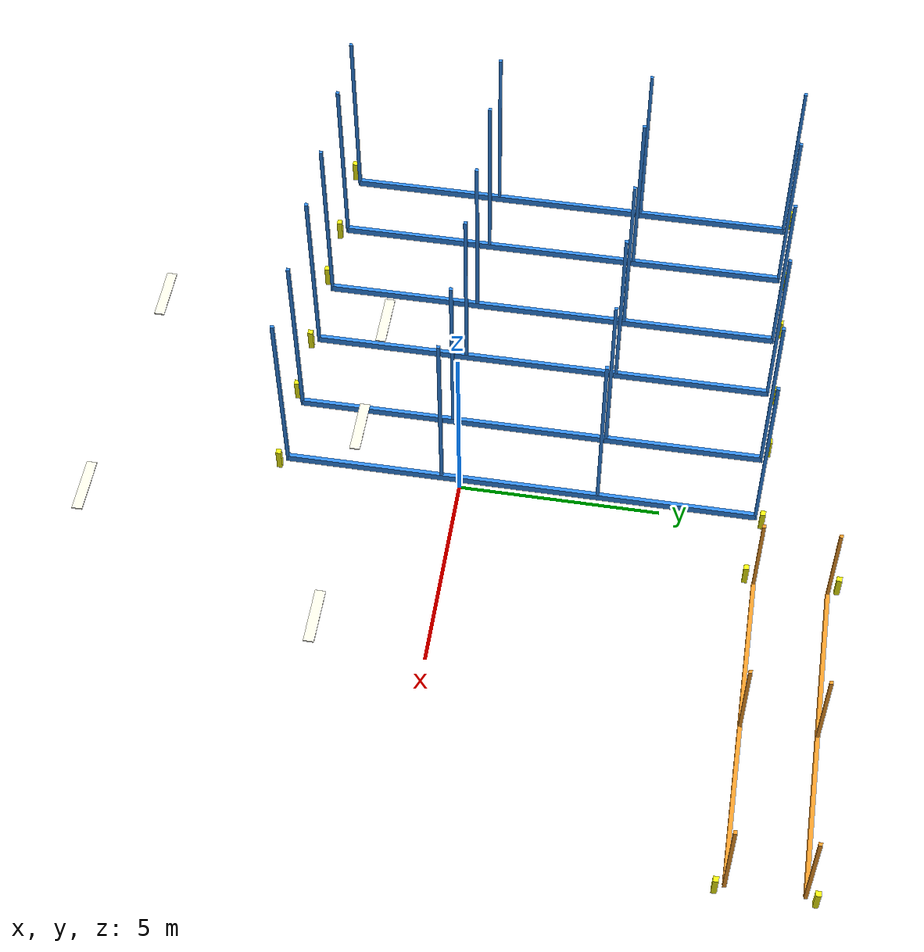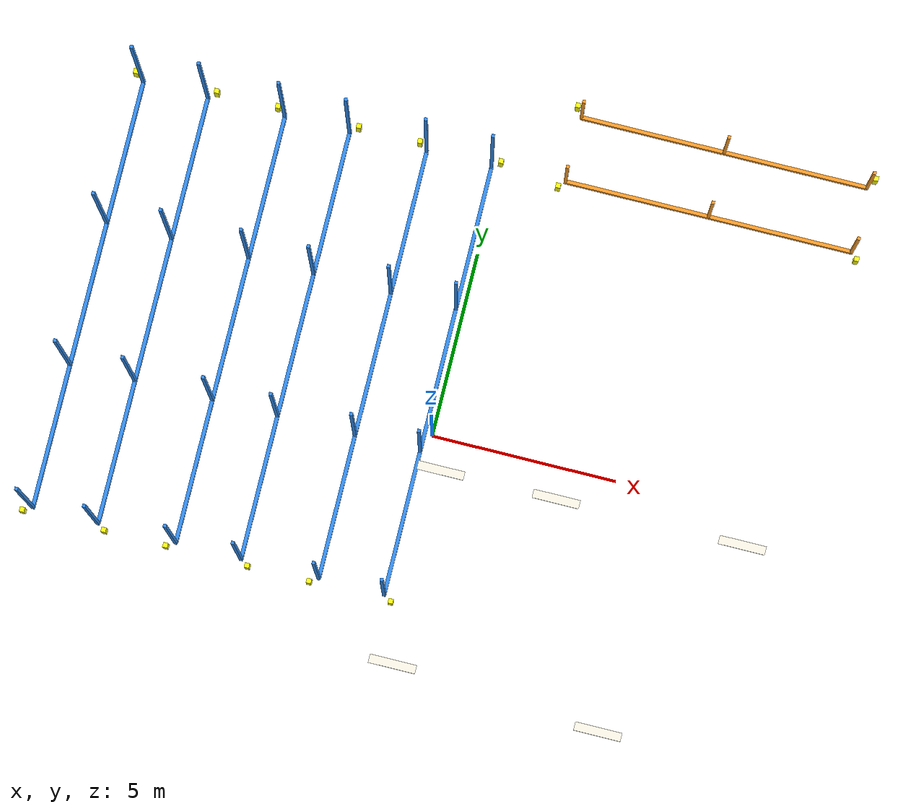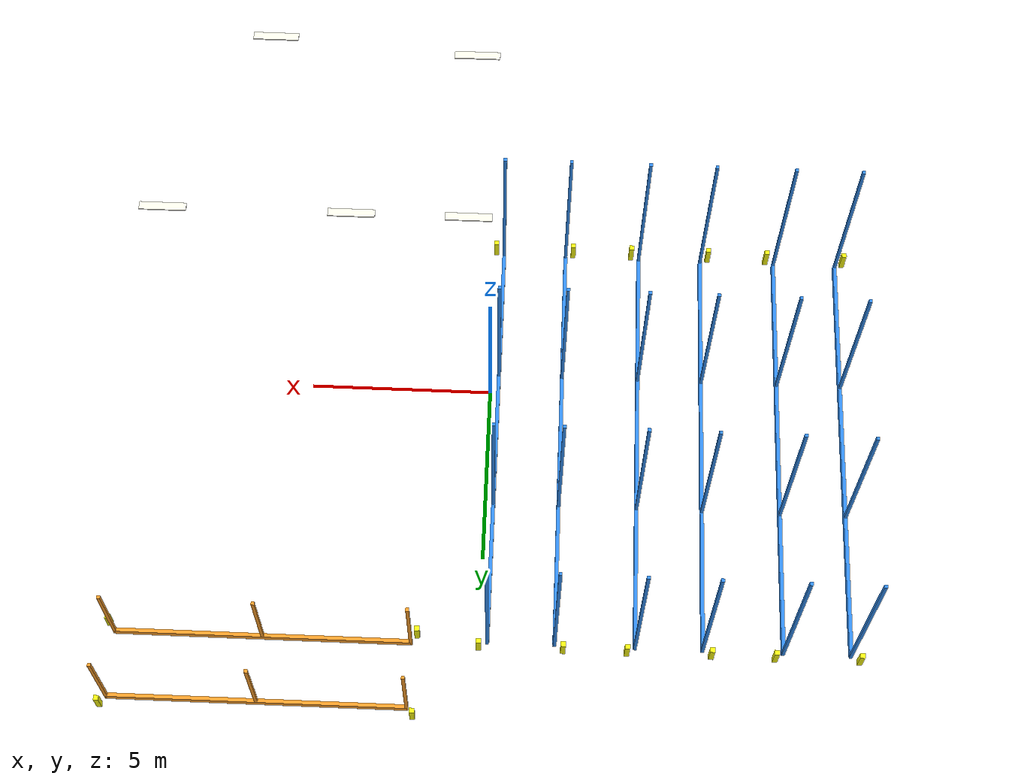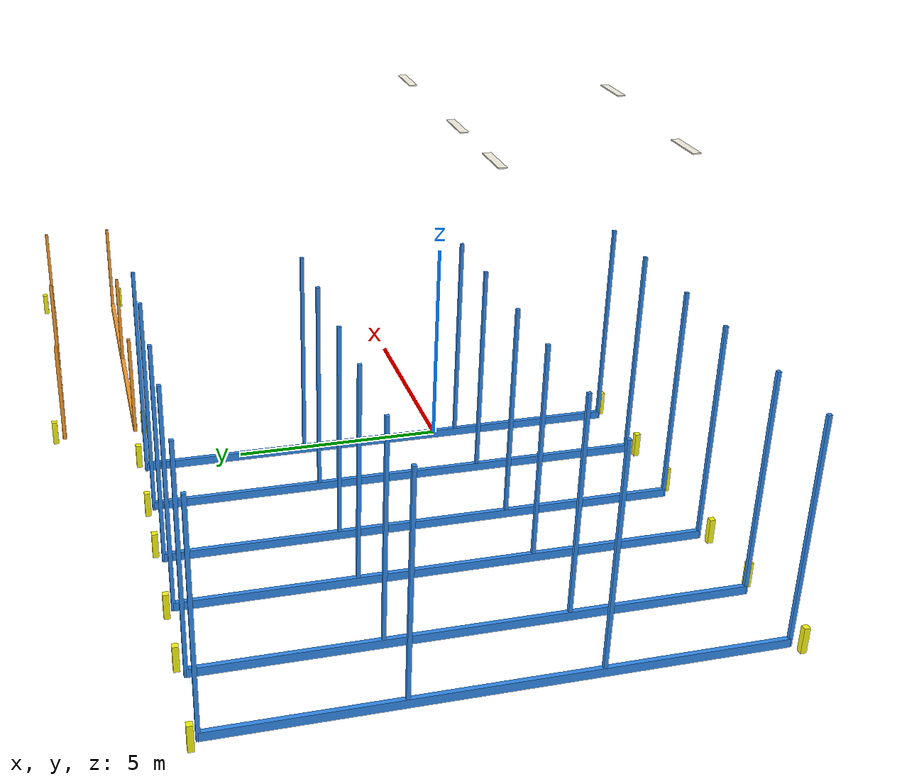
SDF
<sdf version="1.8">
 <world name="warehouse_v2">
  <model name="lamp_glow_6">
   <static>true</static>
   <pose>0.62 -6.50 6.97 0 0 0</pose>
   <link name="link">
    <visual name="visual">
     <geometry><box><size>1.20 0.22 0.03</size></box></geometry>
     <material>
      <ambient>1 0.98 0.92 1</ambient>
      <diffuse>1 0.98 0.92 1</diffuse>
      <specular>0.2 0.2 0.2 1</specular>
      <emissive>1 0.97 0.90 1</emissive>
     </material>
     <cast_shadows>false</cast_shadows>
    </visual>
   </link>
  </model>
  <model name="lamp_glow_7">
   <static>true</static>
   <pose>0.62 -1.50 6.97 0 0 0</pose>
   <link name="link">
    <visual name="visual">
     <geometry><box><size>1.20 0.22 0.03</size></box></geometry>
     <material>
      <ambient>1 0.98 0.92 1</ambient>
      <diffuse>1 0.98 0.92 1</diffuse>
      <specular>0.2 0.2 0.2 1</specular>
      <emissive>1 0.97 0.90 1</emissive>
     </material>
     <cast_shadows>false</cast_shadows>
    </visual>
   </link>
  </model>
  <model name="lamp_glow_10">
   <static>true</static>
   <pose>3.60 -1.50 6.97 0 0 0</pose>
   <link name="link">
    <visual name="visual">
     <geometry><box><size>1.20 0.22 0.03</size></box></geometry>
     <material>
      <ambient>1 0.98 0.92 1</ambient>
      <diffuse>1 0.98 0.92 1</diffuse>
      <specular>0.2 0.2 0.2 1</specular>
      <emissive>1 0.97 0.90 1</emissive>
     </material>
     <cast_shadows>false</cast_shadows>
    </visual>
   </link>
  </model>
  <model name="lamp_glow_11">
   <static>true</static>
   <pose>8.40 -1.50 6.97 0 0 0</pose>
   <link name="link">
    <visual name="visual">
     <geometry><box><size>1.20 0.22 0.03</size></box></geometry>
     <material>
      <ambient>1 0.98 0.92 1</ambient>
      <diffuse>1 0.98 0.92 1</diffuse>
      <specular>0.2 0.2 0.2 1</specular>
      <emissive>1 0.97 0.90 1</emissive>
     </material>
     <cast_shadows>false</cast_shadows>
    </visual>
   </link>
  </model>
  <model name="lamp_glow_15">
   <static>true</static>
   <pose>6.00 -6.90 6.97 0 0 0</pose>
   <link name="link">
    <visual name="visual">
     <geometry><box><size>1.20 0.22 0.03</size></box></geometry>
     <material>
      <ambient>1 0.98 0.92 1</ambient>
      <diffuse>1 0.98 0.92 1</diffuse>
      <specular>0.2 0.2 0.2 1</specular>
      <emissive>1 0.97 0.90 1</emissive>
     </material>
     <cast_shadows>false</cast_shadows>
    </visual>
   </link>
  </model>
  <model name="ground_plane">
   <static>true</static>
   <link name="link">
    <collision name="collision">
     <geometry><plane><normal>0 0 1</normal><size>24.5 20.5</size></plane></geometry>
    </collision>
   </link>
  </model>
  <model name="warehouse_v2_rack_frames">
   <static>true</static>
   <link name="post_A1_0n">
    <pose>-9.790 -4.400 2.613 0 0 0.0000</pose>
    <visual name="visual">
     <geometry><box><size>0.085 0.085 5.226</size></box></geometry>
     <material>
      <ambient>0.20 0.56 0.95 1</ambient>
      <diffuse>0.20 0.56 0.95 1</diffuse>
      <specular>0.08 0.08 0.08 1</specular>
      <pbr>
       <metal>
        <albedo_map>model://warehouse_pbr/materials/textures/metal_albedo.png</albedo_map>
        <normal_map>model://warehouse_pbr/materials/textures/metal_normal.png</normal_map>
        <roughness_map>model://warehouse_pbr/materials/textures/metal_roughness.png</roughness_map>
        <metalness_map>model://warehouse_pbr/materials/textures/metal_metalness.png</metalness_map>
       </metal>
      </pbr>
     </material>
    </visual>
   </link>
   <link name="post_A1_0s">
    <pose>-8.010 -4.400 2.613 0 0 0.0000</pose>
    <visual name="visual">
     <geometry><box><size>0.085 0.085 5.226</size></box></geometry>
     <material>
      <ambient>0.20 0.56 0.95 1</ambient>
      <diffuse>0.20 0.56 0.95 1</diffuse>
      <specular>0.08 0.08 0.08 1</specular>
      <pbr>
       <metal>
        <albedo_map>model://warehouse_pbr/materials/textures/metal_albedo.png</albedo_map>
        <normal_map>model://warehouse_pbr/materials/textures/metal_normal.png</normal_map>
        <roughness_map>model://warehouse_pbr/materials/textures/metal_roughness.png</roughness_map>
        <metalness_map>model://warehouse_pbr/materials/textures/metal_metalness.png</metalness_map>
       </metal>
      </pbr>
     </material>
    </visual>
   </link>
   <link name="post_A1_1n">
    <pose>-9.790 -0.483 2.613 0 0 0.0000</pose>
    <visual name="visual">
     <geometry><box><size>0.085 0.085 5.226</size></box></geometry>
     <material>
      <ambient>0.20 0.56 0.95 1</ambient>
      <diffuse>0.20 0.56 0.95 1</diffuse>
      <specular>0.08 0.08 0.08 1</specular>
      <pbr>
       <metal>
        <albedo_map>model://warehouse_pbr/materials/textures/metal_albedo.png</albedo_map>
        <normal_map>model://warehouse_pbr/materials/textures/metal_normal.png</normal_map>
        <roughness_map>model://warehouse_pbr/materials/textures/metal_roughness.png</roughness_map>
        <metalness_map>model://warehouse_pbr/materials/textures/metal_metalness.png</metalness_map>
       </metal>
      </pbr>
     </material>
    </visual>
   </link>
   <link name="post_A1_1s">
    <pose>-8.010 -0.483 2.613 0 0 0.0000</pose>
    <visual name="visual">
     <geometry><box><size>0.085 0.085 5.226</size></box></geometry>
     <material>
      <ambient>0.20 0.56 0.95 1</ambient>
      <diffuse>0.20 0.56 0.95 1</diffuse>
      <specular>0.08 0.08 0.08 1</specular>
      <pbr>
       <metal>
        <albedo_map>model://warehouse_pbr/materials/textures/metal_albedo.png</albedo_map>
        <normal_map>model://warehouse_pbr/materials/textures/metal_normal.png</normal_map>
        <roughness_map>model://warehouse_pbr/materials/textures/metal_roughness.png</roughness_map>
        <metalness_map>model://warehouse_pbr/materials/textures/metal_metalness.png</metalness_map>
       </metal>
      </pbr>
     </material>
    </visual>
   </link>
   <link name="post_A1_2n">
    <pose>-9.790 3.434 2.613 0 0 0.0000</pose>
    <visual name="visual">
     <geometry><box><size>0.085 0.085 5.226</size></box></geometry>
     <material>
      <ambient>0.20 0.56 0.95 1</ambient>
      <diffuse>0.20 0.56 0.95 1</diffuse>
      <specular>0.08 0.08 0.08 1</specular>
      <pbr>
       <metal>
        <albedo_map>model://warehouse_pbr/materials/textures/metal_albedo.png</albedo_map>
        <normal_map>model://warehouse_pbr/materials/textures/metal_normal.png</normal_map>
        <roughness_map>model://warehouse_pbr/materials/textures/metal_roughness.png</roughness_map>
        <metalness_map>model://warehouse_pbr/materials/textures/metal_metalness.png</metalness_map>
       </metal>
      </pbr>
     </material>
    </visual>
   </link>
   <link name="post_A1_2s">
    <pose>-8.010 3.434 2.613 0 0 0.0000</pose>
    <visual name="visual">
     <geometry><box><size>0.085 0.085 5.226</size></box></geometry>
     <material>
      <ambient>0.20 0.56 0.95 1</ambient>
      <diffuse>0.20 0.56 0.95 1</diffuse>
      <specular>0.08 0.08 0.08 1</specular>
      <pbr>
       <metal>
        <albedo_map>model://warehouse_pbr/materials/textures/metal_albedo.png</albedo_map>
        <normal_map>model://warehouse_pbr/materials/textures/metal_normal.png</normal_map>
        <roughness_map>model://warehouse_pbr/materials/textures/metal_roughness.png</roughness_map>
        <metalness_map>model://warehouse_pbr/materials/textures/metal_metalness.png</metalness_map>
       </metal>
      </pbr>
     </material>
    </visual>
   </link>
   <link name="post_A1_3n">
    <pose>-9.790 7.351 2.613 0 0 0.0000</pose>
    <visual name="visual">
     <geometry><box><size>0.085 0.085 5.226</size></box></geometry>
     <material>
      <ambient>0.20 0.56 0.95 1</ambient>
      <diffuse>0.20 0.56 0.95 1</diffuse>
      <specular>0.08 0.08 0.08 1</specular>
      <pbr>
       <metal>
        <albedo_map>model://warehouse_pbr/materials/textures/metal_albedo.png</albedo_map>
        <normal_map>model://warehouse_pbr/materials/textures/metal_normal.png</normal_map>
        <roughness_map>model://warehouse_pbr/materials/textures/metal_roughness.png</roughness_map>
        <metalness_map>model://warehouse_pbr/materials/textures/metal_metalness.png</metalness_map>
       </metal>
      </pbr>
     </material>
    </visual>
   </link>
   <link name="post_A1_3s">
    <pose>-8.010 7.351 2.613 0 0 0.0000</pose>
    <visual name="visual">
     <geometry><box><size>0.085 0.085 5.226</size></box></geometry>
     <material>
      <ambient>0.20 0.56 0.95 1</ambient>
      <diffuse>0.20 0.56 0.95 1</diffuse>
      <specular>0.08 0.08 0.08 1</specular>
      <pbr>
       <metal>
        <albedo_map>model://warehouse_pbr/materials/textures/metal_albedo.png</albedo_map>
        <normal_map>model://warehouse_pbr/materials/textures/metal_normal.png</normal_map>
        <roughness_map>model://warehouse_pbr/materials/textures/metal_roughness.png</roughness_map>
        <metalness_map>model://warehouse_pbr/materials/textures/metal_metalness.png</metalness_map>
       </metal>
      </pbr>
     </material>
    </visual>
   </link>
   <link name="kick_A1_n">
    <pose>-9.790 1.475 0.100 0 0 0.0000</pose>
    <visual name="visual">
     <geometry><box><size>0.100 11.751 0.200</size></box></geometry>
     <material>
      <ambient>0.20 0.56 0.95 1</ambient>
      <diffuse>0.20 0.56 0.95 1</diffuse>
      <specular>0.08 0.08 0.08 1</specular>
      <pbr>
       <metal>
        <albedo_map>model://warehouse_pbr/materials/textures/metal_albedo.png</albedo_map>
        <normal_map>model://warehouse_pbr/materials/textures/metal_normal.png</normal_map>
        <roughness_map>model://warehouse_pbr/materials/textures/metal_roughness.png</roughness_map>
        <metalness_map>model://warehouse_pbr/materials/textures/metal_metalness.png</metalness_map>
       </metal>
      </pbr>
     </material>
    </visual>
   </link>
   <link name="kick_A1_s">
    <pose>-8.010 1.475 0.100 0 0 0.0000</pose>
    <visual name="visual">
     <geometry><box><size>0.100 11.751 0.200</size></box></geometry>
     <material>
      <ambient>0.20 0.56 0.95 1</ambient>
      <diffuse>0.20 0.56 0.95 1</diffuse>
      <specular>0.08 0.08 0.08 1</specular>
      <pbr>
       <metal>
        <albedo_map>model://warehouse_pbr/materials/textures/metal_albedo.png</albedo_map>
        <normal_map>model://warehouse_pbr/materials/textures/metal_normal.png</normal_map>
        <roughness_map>model://warehouse_pbr/materials/textures/metal_roughness.png</roughness_map>
        <metalness_map>model://warehouse_pbr/materials/textures/metal_metalness.png</metalness_map>
       </metal>
      </pbr>
     </material>
    </visual>
   </link>
   <link name="guard_A1_ws">
    <pose>-10.010 -4.560 0.300 0 0 0.0000</pose>
    <visual name="visual">
     <geometry><box><size>0.130 0.130 0.600</size></box></geometry>
     <material>
      <ambient>1.00 1.00 0.07 1</ambient>
      <diffuse>1.00 1.00 0.07 1</diffuse>
      <specular>0.08 0.08 0.08 1</specular>
      <pbr>
       <metal>
        <albedo_map>model://warehouse_pbr/materials/textures/metal_albedo.png</albedo_map>
        <normal_map>model://warehouse_pbr/materials/textures/metal_normal.png</normal_map>
        <roughness_map>model://warehouse_pbr/materials/textures/metal_roughness.png</roughness_map>
        <metalness_map>model://warehouse_pbr/materials/textures/metal_metalness.png</metalness_map>
       </metal>
      </pbr>
     </material>
    </visual>
   </link>
   <link name="guard_A1_wn">
    <pose>-10.010 7.511 0.300 0 0 0.0000</pose>
    <visual name="visual">
     <geometry><box><size>0.130 0.130 0.600</size></box></geometry>
     <material>
      <ambient>1.00 1.00 0.07 1</ambient>
      <diffuse>1.00 1.00 0.07 1</diffuse>
      <specular>0.08 0.08 0.08 1</specular>
      <pbr>
       <metal>
        <albedo_map>model://warehouse_pbr/materials/textures/metal_albedo.png</albedo_map>
        <normal_map>model://warehouse_pbr/materials/textures/metal_normal.png</normal_map>
        <roughness_map>model://warehouse_pbr/materials/textures/metal_roughness.png</roughness_map>
        <metalness_map>model://warehouse_pbr/materials/textures/metal_metalness.png</metalness_map>
       </metal>
      </pbr>
     </material>
    </visual>
   </link>
   <link name="guard_A1_ms">
    <pose>-7.790 -4.560 0.300 0 0 0.0000</pose>
    <visual name="visual">
     <geometry><box><size>0.130 0.130 0.600</size></box></geometry>
     <material>
      <ambient>1.00 1.00 0.07 1</ambient>
      <diffuse>1.00 1.00 0.07 1</diffuse>
      <specular>0.08 0.08 0.08 1</specular>
      <pbr>
       <metal>
        <albedo_map>model://warehouse_pbr/materials/textures/metal_albedo.png</albedo_map>
        <normal_map>model://warehouse_pbr/materials/textures/metal_normal.png</normal_map>
        <roughness_map>model://warehouse_pbr/materials/textures/metal_roughness.png</roughness_map>
        <metalness_map>model://warehouse_pbr/materials/textures/metal_metalness.png</metalness_map>
       </metal>
      </pbr>
     </material>
    </visual>
   </link>
   <link name="guard_A1_mn">
    <pose>-7.790 7.511 0.300 0 0 0.0000</pose>
    <visual name="visual">
     <geometry><box><size>0.130 0.130 0.600</size></box></geometry>
     <material>
      <ambient>1.00 1.00 0.07 1</ambient>
      <diffuse>1.00 1.00 0.07 1</diffuse>
      <specular>0.08 0.08 0.08 1</specular>
      <pbr>
       <metal>
        <albedo_map>model://warehouse_pbr/materials/textures/metal_albedo.png</albedo_map>
        <normal_map>model://warehouse_pbr/materials/textures/metal_normal.png</normal_map>
        <roughness_map>model://warehouse_pbr/materials/textures/metal_roughness.png</roughness_map>
        <metalness_map>model://warehouse_pbr/materials/textures/metal_metalness.png</metalness_map>
       </metal>
      </pbr>
     </material>
    </visual>
   </link>
   <link name="post_A2_0n">
    <pose>-5.890 -4.400 2.613 0 0 0.0000</pose>
    <visual name="visual">
     <geometry><box><size>0.085 0.085 5.226</size></box></geometry>
     <material>
      <ambient>0.20 0.56 0.95 1</ambient>
      <diffuse>0.20 0.56 0.95 1</diffuse>
      <specular>0.08 0.08 0.08 1</specular>
      <pbr>
       <metal>
        <albedo_map>model://warehouse_pbr/materials/textures/metal_albedo.png</albedo_map>
        <normal_map>model://warehouse_pbr/materials/textures/metal_normal.png</normal_map>
        <roughness_map>model://warehouse_pbr/materials/textures/metal_roughness.png</roughness_map>
        <metalness_map>model://warehouse_pbr/materials/textures/metal_metalness.png</metalness_map>
       </metal>
      </pbr>
     </material>
    </visual>
   </link>
   <link name="post_A2_0s">
    <pose>-4.110 -4.400 2.613 0 0 0.0000</pose>
    <visual name="visual">
     <geometry><box><size>0.085 0.085 5.226</size></box></geometry>
     <material>
      <ambient>0.20 0.56 0.95 1</ambient>
      <diffuse>0.20 0.56 0.95 1</diffuse>
      <specular>0.08 0.08 0.08 1</specular>
      <pbr>
       <metal>
        <albedo_map>model://warehouse_pbr/materials/textures/metal_albedo.png</albedo_map>
        <normal_map>model://warehouse_pbr/materials/textures/metal_normal.png</normal_map>
        <roughness_map>model://warehouse_pbr/materials/textures/metal_roughness.png</roughness_map>
        <metalness_map>model://warehouse_pbr/materials/textures/metal_metalness.png</metalness_map>
       </metal>
      </pbr>
     </material>
    </visual>
   </link>
   <link name="post_A2_1n">
    <pose>-5.890 -0.483 2.613 0 0 0.0000</pose>
    <visual name="visual">
     <geometry><box><size>0.085 0.085 5.226</size></box></geometry>
     <material>
      <ambient>0.20 0.56 0.95 1</ambient>
      <diffuse>0.20 0.56 0.95 1</diffuse>
      <specular>0.08 0.08 0.08 1</specular>
      <pbr>
       <metal>
        <albedo_map>model://warehouse_pbr/materials/textures/metal_albedo.png</albedo_map>
        <normal_map>model://warehouse_pbr/materials/textures/metal_normal.png</normal_map>
        <roughness_map>model://warehouse_pbr/materials/textures/metal_roughness.png</roughness_map>
        <metalness_map>model://warehouse_pbr/materials/textures/metal_metalness.png</metalness_map>
       </metal>
      </pbr>
     </material>
    </visual>
   </link>
   <link name="post_A2_1s">
    <pose>-4.110 -0.483 2.613 0 0 0.0000</pose>
    <visual name="visual">
     <geometry><box><size>0.085 0.085 5.226</size></box></geometry>
     <material>
      <ambient>0.20 0.56 0.95 1</ambient>
      <diffuse>0.20 0.56 0.95 1</diffuse>
      <specular>0.08 0.08 0.08 1</specular>
      <pbr>
       <metal>
        <albedo_map>model://warehouse_pbr/materials/textures/metal_albedo.png</albedo_map>
        <normal_map>model://warehouse_pbr/materials/textures/metal_normal.png</normal_map>
        <roughness_map>model://warehouse_pbr/materials/textures/metal_roughness.png</roughness_map>
        <metalness_map>model://warehouse_pbr/materials/textures/metal_metalness.png</metalness_map>
       </metal>
      </pbr>
     </material>
    </visual>
   </link>
   <link name="post_A2_2n">
    <pose>-5.890 3.434 2.613 0 0 0.0000</pose>
    <visual name="visual">
     <geometry><box><size>0.085 0.085 5.226</size></box></geometry>
     <material>
      <ambient>0.20 0.56 0.95 1</ambient>
      <diffuse>0.20 0.56 0.95 1</diffuse>
      <specular>0.08 0.08 0.08 1</specular>
      <pbr>
       <metal>
        <albedo_map>model://warehouse_pbr/materials/textures/metal_albedo.png</albedo_map>
        <normal_map>model://warehouse_pbr/materials/textures/metal_normal.png</normal_map>
        <roughness_map>model://warehouse_pbr/materials/textures/metal_roughness.png</roughness_map>
        <metalness_map>model://warehouse_pbr/materials/textures/metal_metalness.png</metalness_map>
       </metal>
      </pbr>
     </material>
    </visual>
   </link>
   <link name="post_A2_2s">
    <pose>-4.110 3.434 2.613 0 0 0.0000</pose>
    <visual name="visual">
     <geometry><box><size>0.085 0.085 5.226</size></box></geometry>
     <material>
      <ambient>0.20 0.56 0.95 1</ambient>
      <diffuse>0.20 0.56 0.95 1</diffuse>
      <specular>0.08 0.08 0.08 1</specular>
      <pbr>
       <metal>
        <albedo_map>model://warehouse_pbr/materials/textures/metal_albedo.png</albedo_map>
        <normal_map>model://warehouse_pbr/materials/textures/metal_normal.png</normal_map>
        <roughness_map>model://warehouse_pbr/materials/textures/metal_roughness.png</roughness_map>
        <metalness_map>model://warehouse_pbr/materials/textures/metal_metalness.png</metalness_map>
       </metal>
      </pbr>
     </material>
    </visual>
   </link>
   <link name="post_A2_3n">
    <pose>-5.890 7.351 2.613 0 0 0.0000</pose>
    <visual name="visual">
     <geometry><box><size>0.085 0.085 5.226</size></box></geometry>
     <material>
      <ambient>0.20 0.56 0.95 1</ambient>
      <diffuse>0.20 0.56 0.95 1</diffuse>
      <specular>0.08 0.08 0.08 1</specular>
      <pbr>
       <metal>
        <albedo_map>model://warehouse_pbr/materials/textures/metal_albedo.png</albedo_map>
        <normal_map>model://warehouse_pbr/materials/textures/metal_normal.png</normal_map>
        <roughness_map>model://warehouse_pbr/materials/textures/metal_roughness.png</roughness_map>
        <metalness_map>model://warehouse_pbr/materials/textures/metal_metalness.png</metalness_map>
       </metal>
      </pbr>
     </material>
    </visual>
   </link>
   <link name="post_A2_3s">
    <pose>-4.110 7.351 2.613 0 0 0.0000</pose>
    <visual name="visual">
     <geometry><box><size>0.085 0.085 5.226</size></box></geometry>
     <material>
      <ambient>0.20 0.56 0.95 1</ambient>
      <diffuse>0.20 0.56 0.95 1</diffuse>
      <specular>0.08 0.08 0.08 1</specular>
      <pbr>
       <metal>
        <albedo_map>model://warehouse_pbr/materials/textures/metal_albedo.png</albedo_map>
        <normal_map>model://warehouse_pbr/materials/textures/metal_normal.png</normal_map>
        <roughness_map>model://warehouse_pbr/materials/textures/metal_roughness.png</roughness_map>
        <metalness_map>model://warehouse_pbr/materials/textures/metal_metalness.png</metalness_map>
       </metal>
      </pbr>
     </material>
    </visual>
   </link>
   <link name="kick_A2_n">
    <pose>-5.890 1.475 0.100 0 0 0.0000</pose>
    <visual name="visual">
     <geometry><box><size>0.100 11.751 0.200</size></box></geometry>
     <material>
      <ambient>0.20 0.56 0.95 1</ambient>
      <diffuse>0.20 0.56 0.95 1</diffuse>
      <specular>0.08 0.08 0.08 1</specular>
      <pbr>
       <metal>
        <albedo_map>model://warehouse_pbr/materials/textures/metal_albedo.png</albedo_map>
        <normal_map>model://warehouse_pbr/materials/textures/metal_normal.png</normal_map>
        <roughness_map>model://warehouse_pbr/materials/textures/metal_roughness.png</roughness_map>
        <metalness_map>model://warehouse_pbr/materials/textures/metal_metalness.png</metalness_map>
       </metal>
      </pbr>
     </material>
    </visual>
   </link>
   <link name="kick_A2_s">
    <pose>-4.110 1.475 0.100 0 0 0.0000</pose>
    <visual name="visual">
     <geometry><box><size>0.100 11.751 0.200</size></box></geometry>
     <material>
      <ambient>0.20 0.56 0.95 1</ambient>
      <diffuse>0.20 0.56 0.95 1</diffuse>
      <specular>0.08 0.08 0.08 1</specular>
      <pbr>
       <metal>
        <albedo_map>model://warehouse_pbr/materials/textures/metal_albedo.png</albedo_map>
        <normal_map>model://warehouse_pbr/materials/textures/metal_normal.png</normal_map>
        <roughness_map>model://warehouse_pbr/materials/textures/metal_roughness.png</roughness_map>
        <metalness_map>model://warehouse_pbr/materials/textures/metal_metalness.png</metalness_map>
       </metal>
      </pbr>
     </material>
    </visual>
   </link>
   <link name="guard_A2_ws">
    <pose>-6.110 -4.560 0.300 0 0 0.0000</pose>
    <visual name="visual">
     <geometry><box><size>0.130 0.130 0.600</size></box></geometry>
     <material>
      <ambient>1.00 1.00 0.07 1</ambient>
      <diffuse>1.00 1.00 0.07 1</diffuse>
      <specular>0.08 0.08 0.08 1</specular>
      <pbr>
       <metal>
        <albedo_map>model://warehouse_pbr/materials/textures/metal_albedo.png</albedo_map>
        <normal_map>model://warehouse_pbr/materials/textures/metal_normal.png</normal_map>
        <roughness_map>model://warehouse_pbr/materials/textures/metal_roughness.png</roughness_map>
        <metalness_map>model://warehouse_pbr/materials/textures/metal_metalness.png</metalness_map>
       </metal>
      </pbr>
     </material>
    </visual>
   </link>
   <link name="guard_A2_wn">
    <pose>-6.110 7.511 0.300 0 0 0.0000</pose>
    <visual name="visual">
     <geometry><box><size>0.130 0.130 0.600</size></box></geometry>
     <material>
      <ambient>1.00 1.00 0.07 1</ambient>
      <diffuse>1.00 1.00 0.07 1</diffuse>
      <specular>0.08 0.08 0.08 1</specular>
      <pbr>
       <metal>
        <albedo_map>model://warehouse_pbr/materials/textures/metal_albedo.png</albedo_map>
        <normal_map>model://warehouse_pbr/materials/textures/metal_normal.png</normal_map>
        <roughness_map>model://warehouse_pbr/materials/textures/metal_roughness.png</roughness_map>
        <metalness_map>model://warehouse_pbr/materials/textures/metal_metalness.png</metalness_map>
       </metal>
      </pbr>
     </material>
    </visual>
   </link>
   <link name="guard_A2_ms">
    <pose>-3.890 -4.560 0.300 0 0 0.0000</pose>
    <visual name="visual">
     <geometry><box><size>0.130 0.130 0.600</size></box></geometry>
     <material>
      <ambient>1.00 1.00 0.07 1</ambient>
      <diffuse>1.00 1.00 0.07 1</diffuse>
      <specular>0.08 0.08 0.08 1</specular>
      <pbr>
       <metal>
        <albedo_map>model://warehouse_pbr/materials/textures/metal_albedo.png</albedo_map>
        <normal_map>model://warehouse_pbr/materials/textures/metal_normal.png</normal_map>
        <roughness_map>model://warehouse_pbr/materials/textures/metal_roughness.png</roughness_map>
        <metalness_map>model://warehouse_pbr/materials/textures/metal_metalness.png</metalness_map>
       </metal>
      </pbr>
     </material>
    </visual>
   </link>
   <link name="guard_A2_mn">
    <pose>-3.890 7.511 0.300 0 0 0.0000</pose>
    <visual name="visual">
     <geometry><box><size>0.130 0.130 0.600</size></box></geometry>
     <material>
      <ambient>1.00 1.00 0.07 1</ambient>
      <diffuse>1.00 1.00 0.07 1</diffuse>
      <specular>0.08 0.08 0.08 1</specular>
      <pbr>
       <metal>
        <albedo_map>model://warehouse_pbr/materials/textures/metal_albedo.png</albedo_map>
        <normal_map>model://warehouse_pbr/materials/textures/metal_normal.png</normal_map>
        <roughness_map>model://warehouse_pbr/materials/textures/metal_roughness.png</roughness_map>
        <metalness_map>model://warehouse_pbr/materials/textures/metal_metalness.png</metalness_map>
       </metal>
      </pbr>
     </material>
    </visual>
   </link>
   <link name="post_A3_0n">
    <pose>-1.990 -4.400 2.613 0 0 0.0000</pose>
    <visual name="visual">
     <geometry><box><size>0.085 0.085 5.226</size></box></geometry>
     <material>
      <ambient>0.20 0.56 0.95 1</ambient>
      <diffuse>0.20 0.56 0.95 1</diffuse>
      <specular>0.08 0.08 0.08 1</specular>
      <pbr>
       <metal>
        <albedo_map>model://warehouse_pbr/materials/textures/metal_albedo.png</albedo_map>
        <normal_map>model://warehouse_pbr/materials/textures/metal_normal.png</normal_map>
        <roughness_map>model://warehouse_pbr/materials/textures/metal_roughness.png</roughness_map>
        <metalness_map>model://warehouse_pbr/materials/textures/metal_metalness.png</metalness_map>
       </metal>
      </pbr>
     </material>
    </visual>
   </link>
   <link name="post_A3_0s">
    <pose>-0.210 -4.400 2.613 0 0 0.0000</pose>
    <visual name="visual">
     <geometry><box><size>0.085 0.085 5.226</size></box></geometry>
     <material>
      <ambient>0.20 0.56 0.95 1</ambient>
      <diffuse>0.20 0.56 0.95 1</diffuse>
      <specular>0.08 0.08 0.08 1</specular>
      <pbr>
       <metal>
        <albedo_map>model://warehouse_pbr/materials/textures/metal_albedo.png</albedo_map>
        <normal_map>model://warehouse_pbr/materials/textures/metal_normal.png</normal_map>
        <roughness_map>model://warehouse_pbr/materials/textures/metal_roughness.png</roughness_map>
        <metalness_map>model://warehouse_pbr/materials/textures/metal_metalness.png</metalness_map>
       </metal>
      </pbr>
     </material>
    </visual>
   </link>
   <link name="post_A3_1n">
    <pose>-1.990 -0.483 2.613 0 0 0.0000</pose>
    <visual name="visual">
     <geometry><box><size>0.085 0.085 5.226</size></box></geometry>
     <material>
      <ambient>0.20 0.56 0.95 1</ambient>
      <diffuse>0.20 0.56 0.95 1</diffuse>
      <specular>0.08 0.08 0.08 1</specular>
      <pbr>
       <metal>
        <albedo_map>model://warehouse_pbr/materials/textures/metal_albedo.png</albedo_map>
        <normal_map>model://warehouse_pbr/materials/textures/metal_normal.png</normal_map>
        <roughness_map>model://warehouse_pbr/materials/textures/metal_roughness.png</roughness_map>
        <metalness_map>model://warehouse_pbr/materials/textures/metal_metalness.png</metalness_map>
       </metal>
      </pbr>
     </material>
    </visual>
   </link>
   <link name="post_A3_1s">
    <pose>-0.210 -0.483 2.613 0 0 0.0000</pose>
    <visual name="visual">
     <geometry><box><size>0.085 0.085 5.226</size></box></geometry>
     <material>
      <ambient>0.20 0.56 0.95 1</ambient>
      <diffuse>0.20 0.56 0.95 1</diffuse>
      <specular>0.08 0.08 0.08 1</specular>
      <pbr>
       <metal>
        <albedo_map>model://warehouse_pbr/materials/textures/metal_albedo.png</albedo_map>
        <normal_map>model://warehouse_pbr/materials/textures/metal_normal.png</normal_map>
        <roughness_map>model://warehouse_pbr/materials/textures/metal_roughness.png</roughness_map>
        <metalness_map>model://warehouse_pbr/materials/textures/metal_metalness.png</metalness_map>
       </metal>
      </pbr>
     </material>
    </visual>
   </link>
   <link name="post_A3_2n">
    <pose>-1.990 3.434 2.613 0 0 0.0000</pose>
    <visual name="visual">
     <geometry><box><size>0.085 0.085 5.226</size></box></geometry>
     <material>
      <ambient>0.20 0.56 0.95 1</ambient>
      <diffuse>0.20 0.56 0.95 1</diffuse>
      <specular>0.08 0.08 0.08 1</specular>
      <pbr>
       <metal>
        <albedo_map>model://warehouse_pbr/materials/textures/metal_albedo.png</albedo_map>
        <normal_map>model://warehouse_pbr/materials/textures/metal_normal.png</normal_map>
        <roughness_map>model://warehouse_pbr/materials/textures/metal_roughness.png</roughness_map>
        <metalness_map>model://warehouse_pbr/materials/textures/metal_metalness.png</metalness_map>
       </metal>
      </pbr>
     </material>
    </visual>
   </link>
   <link name="post_A3_2s">
    <pose>-0.210 3.434 2.613 0 0 0.0000</pose>
    <visual name="visual">
     <geometry><box><size>0.085 0.085 5.226</size></box></geometry>
     <material>
      <ambient>0.20 0.56 0.95 1</ambient>
      <diffuse>0.20 0.56 0.95 1</diffuse>
      <specular>0.08 0.08 0.08 1</specular>
      <pbr>
       <metal>
        <albedo_map>model://warehouse_pbr/materials/textures/metal_albedo.png</albedo_map>
        <normal_map>model://warehouse_pbr/materials/textures/metal_normal.png</normal_map>
        <roughness_map>model://warehouse_pbr/materials/textures/metal_roughness.png</roughness_map>
        <metalness_map>model://warehouse_pbr/materials/textures/metal_metalness.png</metalness_map>
       </metal>
      </pbr>
     </material>
    </visual>
   </link>
   <link name="post_A3_3n">
    <pose>-1.990 7.351 2.613 0 0 0.0000</pose>
    <visual name="visual">
     <geometry><box><size>0.085 0.085 5.226</size></box></geometry>
     <material>
      <ambient>0.20 0.56 0.95 1</ambient>
      <diffuse>0.20 0.56 0.95 1</diffuse>
      <specular>0.08 0.08 0.08 1</specular>
      <pbr>
       <metal>
        <albedo_map>model://warehouse_pbr/materials/textures/metal_albedo.png</albedo_map>
        <normal_map>model://warehouse_pbr/materials/textures/metal_normal.png</normal_map>
        <roughness_map>model://warehouse_pbr/materials/textures/metal_roughness.png</roughness_map>
        <metalness_map>model://warehouse_pbr/materials/textures/metal_metalness.png</metalness_map>
       </metal>
      </pbr>
     </material>
    </visual>
   </link>
   <link name="post_A3_3s">
    <pose>-0.210 7.351 2.613 0 0 0.0000</pose>
    <visual name="visual">
     <geometry><box><size>0.085 0.085 5.226</size></box></geometry>
     <material>
      <ambient>0.20 0.56 0.95 1</ambient>
      <diffuse>0.20 0.56 0.95 1</diffuse>
      <specular>0.08 0.08 0.08 1</specular>
      <pbr>
       <metal>
        <albedo_map>model://warehouse_pbr/materials/textures/metal_albedo.png</albedo_map>
        <normal_map>model://warehouse_pbr/materials/textures/metal_normal.png</normal_map>
        <roughness_map>model://warehouse_pbr/materials/textures/metal_roughness.png</roughness_map>
        <metalness_map>model://warehouse_pbr/materials/textures/metal_metalness.png</metalness_map>
       </metal>
      </pbr>
     </material>
    </visual>
   </link>
   <link name="kick_A3_n">
    <pose>-1.990 1.475 0.100 0 0 0.0000</pose>
    <visual name="visual">
     <geometry><box><size>0.100 11.751 0.200</size></box></geometry>
     <material>
      <ambient>0.20 0.56 0.95 1</ambient>
      <diffuse>0.20 0.56 0.95 1</diffuse>
      <specular>0.08 0.08 0.08 1</specular>
      <pbr>
       <metal>
        <albedo_map>model://warehouse_pbr/materials/textures/metal_albedo.png</albedo_map>
        <normal_map>model://warehouse_pbr/materials/textures/metal_normal.png</normal_map>
        <roughness_map>model://warehouse_pbr/materials/textures/metal_roughness.png</roughness_map>
        <metalness_map>model://warehouse_pbr/materials/textures/metal_metalness.png</metalness_map>
       </metal>
      </pbr>
     </material>
    </visual>
   </link>
   <link name="kick_A3_s">
    <pose>-0.210 1.475 0.100 0 0 0.0000</pose>
    <visual name="visual">
     <geometry><box><size>0.100 11.751 0.200</size></box></geometry>
     <material>
      <ambient>0.20 0.56 0.95 1</ambient>
      <diffuse>0.20 0.56 0.95 1</diffuse>
      <specular>0.08 0.08 0.08 1</specular>
      <pbr>
       <metal>
        <albedo_map>model://warehouse_pbr/materials/textures/metal_albedo.png</albedo_map>
        <normal_map>model://warehouse_pbr/materials/textures/metal_normal.png</normal_map>
        <roughness_map>model://warehouse_pbr/materials/textures/metal_roughness.png</roughness_map>
        <metalness_map>model://warehouse_pbr/materials/textures/metal_metalness.png</metalness_map>
       </metal>
      </pbr>
     </material>
    </visual>
   </link>
   <link name="guard_A3_ws">
    <pose>-2.210 -4.560 0.300 0 0 0.0000</pose>
    <visual name="visual">
     <geometry><box><size>0.130 0.130 0.600</size></box></geometry>
     <material>
      <ambient>1.00 1.00 0.07 1</ambient>
      <diffuse>1.00 1.00 0.07 1</diffuse>
      <specular>0.08 0.08 0.08 1</specular>
      <pbr>
       <metal>
        <albedo_map>model://warehouse_pbr/materials/textures/metal_albedo.png</albedo_map>
        <normal_map>model://warehouse_pbr/materials/textures/metal_normal.png</normal_map>
        <roughness_map>model://warehouse_pbr/materials/textures/metal_roughness.png</roughness_map>
        <metalness_map>model://warehouse_pbr/materials/textures/metal_metalness.png</metalness_map>
       </metal>
      </pbr>
     </material>
    </visual>
   </link>
   <link name="guard_A3_wn">
    <pose>-2.210 7.511 0.300 0 0 0.0000</pose>
    <visual name="visual">
     <geometry><box><size>0.130 0.130 0.600</size></box></geometry>
     <material>
      <ambient>1.00 1.00 0.07 1</ambient>
      <diffuse>1.00 1.00 0.07 1</diffuse>
      <specular>0.08 0.08 0.08 1</specular>
      <pbr>
       <metal>
        <albedo_map>model://warehouse_pbr/materials/textures/metal_albedo.png</albedo_map>
        <normal_map>model://warehouse_pbr/materials/textures/metal_normal.png</normal_map>
        <roughness_map>model://warehouse_pbr/materials/textures/metal_roughness.png</roughness_map>
        <metalness_map>model://warehouse_pbr/materials/textures/metal_metalness.png</metalness_map>
       </metal>
      </pbr>
     </material>
    </visual>
   </link>
   <link name="guard_A3_ms">
    <pose>0.010 -4.560 0.300 0 0 0.0000</pose>
    <visual name="visual">
     <geometry><box><size>0.130 0.130 0.600</size></box></geometry>
     <material>
      <ambient>1.00 1.00 0.07 1</ambient>
      <diffuse>1.00 1.00 0.07 1</diffuse>
      <specular>0.08 0.08 0.08 1</specular>
      <pbr>
       <metal>
        <albedo_map>model://warehouse_pbr/materials/textures/metal_albedo.png</albedo_map>
        <normal_map>model://warehouse_pbr/materials/textures/metal_normal.png</normal_map>
        <roughness_map>model://warehouse_pbr/materials/textures/metal_roughness.png</roughness_map>
        <metalness_map>model://warehouse_pbr/materials/textures/metal_metalness.png</metalness_map>
       </metal>
      </pbr>
     </material>
    </visual>
   </link>
   <link name="guard_A3_mn">
    <pose>0.010 7.511 0.300 0 0 0.0000</pose>
    <visual name="visual">
     <geometry><box><size>0.130 0.130 0.600</size></box></geometry>
     <material>
      <ambient>1.00 1.00 0.07 1</ambient>
      <diffuse>1.00 1.00 0.07 1</diffuse>
      <specular>0.08 0.08 0.08 1</specular>
      <pbr>
       <metal>
        <albedo_map>model://warehouse_pbr/materials/textures/metal_albedo.png</albedo_map>
        <normal_map>model://warehouse_pbr/materials/textures/metal_normal.png</normal_map>
        <roughness_map>model://warehouse_pbr/materials/textures/metal_roughness.png</roughness_map>
        <metalness_map>model://warehouse_pbr/materials/textures/metal_metalness.png</metalness_map>
       </metal>
      </pbr>
     </material>
    </visual>
   </link>
   <link name="post_B1_0n">
    <pose>1.800 7.460 1.306 0 0 0.0000</pose>
    <visual name="visual">
     <geometry><box><size>0.085 0.085 2.613</size></box></geometry>
     <material>
      <ambient>1.00 0.63 0.17 1</ambient>
      <diffuse>1.00 0.63 0.17 1</diffuse>
      <specular>0.08 0.08 0.08 1</specular>
      <pbr>
       <metal>
        <albedo_map>model://warehouse_pbr/materials/textures/metal_albedo.png</albedo_map>
        <normal_map>model://warehouse_pbr/materials/textures/metal_normal.png</normal_map>
        <roughness_map>model://warehouse_pbr/materials/textures/metal_roughness.png</roughness_map>
        <metalness_map>model://warehouse_pbr/materials/textures/metal_metalness.png</metalness_map>
       </metal>
      </pbr>
     </material>
    </visual>
   </link>
   <link name="post_B1_0s">
    <pose>1.800 9.240 1.306 0 0 0.0000</pose>
    <visual name="visual">
     <geometry><box><size>0.085 0.085 2.613</size></box></geometry>
     <material>
      <ambient>1.00 0.63 0.17 1</ambient>
      <diffuse>1.00 0.63 0.17 1</diffuse>
      <specular>0.08 0.08 0.08 1</specular>
      <pbr>
       <metal>
        <albedo_map>model://warehouse_pbr/materials/textures/metal_albedo.png</albedo_map>
        <normal_map>model://warehouse_pbr/materials/textures/metal_normal.png</normal_map>
        <roughness_map>model://warehouse_pbr/materials/textures/metal_roughness.png</roughness_map>
        <metalness_map>model://warehouse_pbr/materials/textures/metal_metalness.png</metalness_map>
       </metal>
      </pbr>
     </material>
    </visual>
   </link>
   <link name="post_B1_1n">
    <pose>5.717 7.460 1.306 0 0 0.0000</pose>
    <visual name="visual">
     <geometry><box><size>0.085 0.085 2.613</size></box></geometry>
     <material>
      <ambient>1.00 0.63 0.17 1</ambient>
      <diffuse>1.00 0.63 0.17 1</diffuse>
      <specular>0.08 0.08 0.08 1</specular>
      <pbr>
       <metal>
        <albedo_map>model://warehouse_pbr/materials/textures/metal_albedo.png</albedo_map>
        <normal_map>model://warehouse_pbr/materials/textures/metal_normal.png</normal_map>
        <roughness_map>model://warehouse_pbr/materials/textures/metal_roughness.png</roughness_map>
        <metalness_map>model://warehouse_pbr/materials/textures/metal_metalness.png</metalness_map>
       </metal>
      </pbr>
     </material>
    </visual>
   </link>
   <link name="post_B1_1s">
    <pose>5.717 9.240 1.306 0 0 0.0000</pose>
    <visual name="visual">
     <geometry><box><size>0.085 0.085 2.613</size></box></geometry>
     <material>
      <ambient>1.00 0.63 0.17 1</ambient>
      <diffuse>1.00 0.63 0.17 1</diffuse>
      <specular>0.08 0.08 0.08 1</specular>
      <pbr>
       <metal>
        <albedo_map>model://warehouse_pbr/materials/textures/metal_albedo.png</albedo_map>
        <normal_map>model://warehouse_pbr/materials/textures/metal_normal.png</normal_map>
        <roughness_map>model://warehouse_pbr/materials/textures/metal_roughness.png</roughness_map>
        <metalness_map>model://warehouse_pbr/materials/textures/metal_metalness.png</metalness_map>
       </metal>
      </pbr>
     </material>
    </visual>
   </link>
   <link name="post_B1_2n">
    <pose>9.634 7.460 1.306 0 0 0.0000</pose>
    <visual name="visual">
     <geometry><box><size>0.085 0.085 2.613</size></box></geometry>
     <material>
      <ambient>1.00 0.63 0.17 1</ambient>
      <diffuse>1.00 0.63 0.17 1</diffuse>
      <specular>0.08 0.08 0.08 1</specular>
      <pbr>
       <metal>
        <albedo_map>model://warehouse_pbr/materials/textures/metal_albedo.png</albedo_map>
        <normal_map>model://warehouse_pbr/materials/textures/metal_normal.png</normal_map>
        <roughness_map>model://warehouse_pbr/materials/textures/metal_roughness.png</roughness_map>
        <metalness_map>model://warehouse_pbr/materials/textures/metal_metalness.png</metalness_map>
       </metal>
      </pbr>
     </material>
    </visual>
   </link>
   <link name="post_B1_2s">
    <pose>9.634 9.240 1.306 0 0 0.0000</pose>
    <visual name="visual">
     <geometry><box><size>0.085 0.085 2.613</size></box></geometry>
     <material>
      <ambient>1.00 0.63 0.17 1</ambient>
      <diffuse>1.00 0.63 0.17 1</diffuse>
      <specular>0.08 0.08 0.08 1</specular>
      <pbr>
       <metal>
        <albedo_map>model://warehouse_pbr/materials/textures/metal_albedo.png</albedo_map>
        <normal_map>model://warehouse_pbr/materials/textures/metal_normal.png</normal_map>
        <roughness_map>model://warehouse_pbr/materials/textures/metal_roughness.png</roughness_map>
        <metalness_map>model://warehouse_pbr/materials/textures/metal_metalness.png</metalness_map>
       </metal>
      </pbr>
     </material>
    </visual>
   </link>
   <link name="kick_B1_n">
    <pose>5.717 7.460 0.100 0 0 0.0000</pose>
    <visual name="visual">
     <geometry><box><size>7.834 0.100 0.200</size></box></geometry>
     <material>
      <ambient>1.00 0.63 0.17 1</ambient>
      <diffuse>1.00 0.63 0.17 1</diffuse>
      <specular>0.08 0.08 0.08 1</specular>
      <pbr>
       <metal>
        <albedo_map>model://warehouse_pbr/materials/textures/metal_albedo.png</albedo_map>
        <normal_map>model://warehouse_pbr/materials/textures/metal_normal.png</normal_map>
        <roughness_map>model://warehouse_pbr/materials/textures/metal_roughness.png</roughness_map>
        <metalness_map>model://warehouse_pbr/materials/textures/metal_metalness.png</metalness_map>
       </metal>
      </pbr>
     </material>
    </visual>
   </link>
   <link name="kick_B1_s">
    <pose>5.717 9.240 0.100 0 0 0.0000</pose>
    <visual name="visual">
     <geometry><box><size>7.834 0.100 0.200</size></box></geometry>
     <material>
      <ambient>1.00 0.63 0.17 1</ambient>
      <diffuse>1.00 0.63 0.17 1</diffuse>
      <specular>0.08 0.08 0.08 1</specular>
      <pbr>
       <metal>
        <albedo_map>model://warehouse_pbr/materials/textures/metal_albedo.png</albedo_map>
        <normal_map>model://warehouse_pbr/materials/textures/metal_normal.png</normal_map>
        <roughness_map>model://warehouse_pbr/materials/textures/metal_roughness.png</roughness_map>
        <metalness_map>model://warehouse_pbr/materials/textures/metal_metalness.png</metalness_map>
       </metal>
      </pbr>
     </material>
    </visual>
   </link>
   <link name="guard_B1_ws">
    <pose>1.640 7.240 0.300 0 0 0.0000</pose>
    <visual name="visual">
     <geometry><box><size>0.130 0.130 0.600</size></box></geometry>
     <material>
      <ambient>1.00 1.00 0.07 1</ambient>
      <diffuse>1.00 1.00 0.07 1</diffuse>
      <specular>0.08 0.08 0.08 1</specular>
      <pbr>
       <metal>
        <albedo_map>model://warehouse_pbr/materials/textures/metal_albedo.png</albedo_map>
        <normal_map>model://warehouse_pbr/materials/textures/metal_normal.png</normal_map>
        <roughness_map>model://warehouse_pbr/materials/textures/metal_roughness.png</roughness_map>
        <metalness_map>model://warehouse_pbr/materials/textures/metal_metalness.png</metalness_map>
       </metal>
      </pbr>
     </material>
    </visual>
   </link>
   <link name="guard_B1_wn">
    <pose>1.640 9.460 0.300 0 0 0.0000</pose>
    <visual name="visual">
     <geometry><box><size>0.130 0.130 0.600</size></box></geometry>
     <material>
      <ambient>1.00 1.00 0.07 1</ambient>
      <diffuse>1.00 1.00 0.07 1</diffuse>
      <specular>0.08 0.08 0.08 1</specular>
      <pbr>
       <metal>
        <albedo_map>model://warehouse_pbr/materials/textures/metal_albedo.png</albedo_map>
        <normal_map>model://warehouse_pbr/materials/textures/metal_normal.png</normal_map>
        <roughness_map>model://warehouse_pbr/materials/textures/metal_roughness.png</roughness_map>
        <metalness_map>model://warehouse_pbr/materials/textures/metal_metalness.png</metalness_map>
       </metal>
      </pbr>
     </material>
    </visual>
   </link>
   <link name="guard_B1_ms">
    <pose>9.794 7.240 0.300 0 0 0.0000</pose>
    <visual name="visual">
     <geometry><box><size>0.130 0.130 0.600</size></box></geometry>
     <material>
      <ambient>1.00 1.00 0.07 1</ambient>
      <diffuse>1.00 1.00 0.07 1</diffuse>
      <specular>0.08 0.08 0.08 1</specular>
      <pbr>
       <metal>
        <albedo_map>model://warehouse_pbr/materials/textures/metal_albedo.png</albedo_map>
        <normal_map>model://warehouse_pbr/materials/textures/metal_normal.png</normal_map>
        <roughness_map>model://warehouse_pbr/materials/textures/metal_roughness.png</roughness_map>
        <metalness_map>model://warehouse_pbr/materials/textures/metal_metalness.png</metalness_map>
       </metal>
      </pbr>
     </material>
    </visual>
   </link>
   <link name="guard_B1_mn">
    <pose>9.794 9.460 0.300 0 0 0.0000</pose>
    <visual name="visual">
     <geometry><box><size>0.130 0.130 0.600</size></box></geometry>
     <material>
      <ambient>1.00 1.00 0.07 1</ambient>
      <diffuse>1.00 1.00 0.07 1</diffuse>
      <specular>0.08 0.08 0.08 1</specular>
      <pbr>
       <metal>
        <albedo_map>model://warehouse_pbr/materials/textures/metal_albedo.png</albedo_map>
        <normal_map>model://warehouse_pbr/materials/textures/metal_normal.png</normal_map>
        <roughness_map>model://warehouse_pbr/materials/textures/metal_roughness.png</roughness_map>
        <metalness_map>model://warehouse_pbr/materials/textures/metal_metalness.png</metalness_map>
       </metal>
      </pbr>
     </material>
    </visual>
   </link>
  </model>
  <include>
   <name>external_camera_e</name>
   <uri>model://external_camera_e</uri>
   <pose>11.450 -9.450 5.000 0 0.7330 2.3038</pose>
  </include>
 </world>
</sdf>
